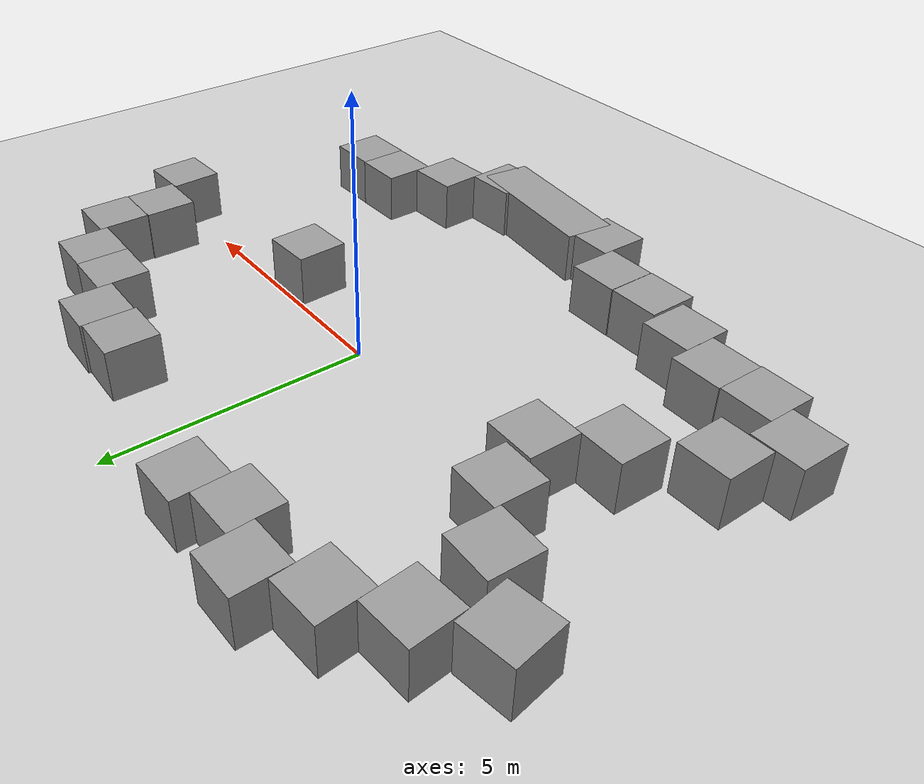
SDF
<sdf version="1.6">
 <world name="default">
  <light name="sun" type="directional">
   <pose>0 0 10 0 -0 0</pose>
   <diffuse>0.8 0.8 0.8 1</diffuse>
   <specular>0.2 0.2 0.2 1</specular>
   <attenuation>
    <range>1000</range>
    <constant>0.9</constant>
    <linear>0.01</linear>
    <quadratic>0.001</quadratic>
   </attenuation>
   <direction>-0.5 0.1 -0.9</direction>
  </light>
  <model name="ground_plane">
   <static>1</static>
   <link name="link">
    <collision name="collision">
     <geometry><plane><normal>0 0 1</normal><size>100 100</size></plane></geometry>
     <surface><friction><ode><mu>100</mu><mu2>50</mu2></ode></friction></surface>
    </collision>
    <visual name="visual">
     <cast_shadows>0</cast_shadows>
     <geometry><plane><normal>0 0 1</normal><size>100 100</size></plane></geometry>
     <material>
      <script><uri>file://media/materials/scripts/gazebo.material</uri><name>Gazebo/Grey</name></script>
     </material>
    </visual>
   </link>
  </model>
  <gravity>0 0 -9.8</gravity>
  <magnetic_field>6e-06 2.3e-05 -4.2e-05</magnetic_field>
  <atmosphere type="adiabatic"/>
  <physics name="default_physics" default="0" type="ode">
   <max_step_size>0.001</max_step_size>
   <real_time_factor>1</real_time_factor>
   <real_time_update_rate>1000</real_time_update_rate>
  </physics>
  <scene><ambient>0.4 0.4 0.4 1</ambient><background>0.7 0.7 0.7 1</background><shadows>1</shadows></scene>
  <audio><device>default</device></audio>
  <spherical_coordinates>
   <surface_model>EARTH_WGS84</surface_model>
   <latitude_deg>0</latitude_deg>
   <longitude_deg>0</longitude_deg>
   <elevation>0</elevation>
   <heading_deg>0</heading_deg>
  </spherical_coordinates>
  <model name="unit_box_0">
   <pose>1.82753 3.62356 0.5 0 0 -0.021123</pose>
   <link name="link">
    <inertial>
     <mass>1</mass>
     <inertia>
      <ixx>0.166667</ixx>
      <ixy>0</ixy>
      <ixz>0</ixz>
      <iyy>0.166667</iyy>
      <iyz>0</iyz>
      <izz>0.166667</izz>
     </inertia>
    </inertial>
    <collision name="collision"><geometry><box><size>1 1 1</size></box></geometry></collision>
    <visual name="visual">
     <geometry><box><size>1 1 1</size></box></geometry>
     <material>
      <script><name>Gazebo/Grey</name><uri>file://media/materials/scripts/gazebo.material</uri></script>
     </material>
    </visual>
   </link>
  </model>
  <model name="unit_box_1">
   <pose>-1.94266 4.33352 0.499995 0 1e-05 0.027602</pose>
   <link name="link">
    <inertial>
     <mass>1</mass>
     <inertia>
      <ixx>0.166667</ixx>
      <ixy>0</ixy>
      <ixz>0</ixz>
      <iyy>0.166667</iyy>
      <iyz>0</iyz>
      <izz>0.166667</izz>
     </inertia>
    </inertial>
    <collision name="collision"><geometry><box><size>1 1 1</size></box></geometry></collision>
    <visual name="visual">
     <geometry><box><size>1 1 1</size></box></geometry>
     <material>
      <script><name>Gazebo/Grey</name><uri>file://media/materials/scripts/gazebo.material</uri></script>
     </material>
    </visual>
   </link>
  </model>
  <model name="unit_box_2">
   <pose>-2.93371 3.98585 0.499995 1e-05 0 0.027647</pose>
   <link name="link">
    <inertial>
     <mass>1</mass>
     <inertia>
      <ixx>0.166667</ixx>
      <ixy>0</ixy>
      <ixz>0</ixz>
      <iyy>0.166667</iyy>
      <iyz>0</iyz>
      <izz>0.166667</izz>
     </inertia>
    </inertial>
    <collision name="collision"><geometry><box><size>1 1 1</size></box></geometry></collision>
    <visual name="visual">
     <geometry><box><size>1 1 1</size></box></geometry>
     <material>
      <script><name>Gazebo/Grey</name><uri>file://media/materials/scripts/gazebo.material</uri></script>
     </material>
    </visual>
   </link>
  </model>
  <model name="unit_box_3">
   <pose>-3.94809 4.49135 0.499995 -1e-05 -0 0.027491</pose>
   <link name="link">
    <inertial>
     <mass>1</mass>
     <inertia>
      <ixx>0.166667</ixx>
      <ixy>0</ixy>
      <ixz>0</ixz>
      <iyy>0.166667</iyy>
      <iyz>0</iyz>
      <izz>0.166667</izz>
     </inertia>
    </inertial>
    <collision name="collision"><geometry><box><size>1 1 1</size></box></geometry></collision>
    <visual name="visual">
     <geometry><box><size>1 1 1</size></box></geometry>
     <material>
      <script><name>Gazebo/Grey</name><uri>file://media/materials/scripts/gazebo.material</uri></script>
     </material>
    </visual>
   </link>
  </model>
  <model name="unit_box_4">
   <pose>-4.92927 3.87665 0.5 0 -0 0.068876</pose>
   <link name="link">
    <inertial>
     <mass>1</mass>
     <inertia>
      <ixx>0.166667</ixx>
      <ixy>0</ixy>
      <ixz>0</ixz>
      <iyy>0.166667</iyy>
      <iyz>0</iyz>
      <izz>0.166667</izz>
     </inertia>
    </inertial>
    <collision name="collision"><geometry><box><size>1 1 1</size></box></geometry></collision>
    <visual name="visual">
     <geometry><box><size>1 1 1</size></box></geometry>
     <material>
      <script><name>Gazebo/Grey</name><uri>file://media/materials/scripts/gazebo.material</uri></script>
     </material>
    </visual>
   </link>
  </model>
  <model name="unit_box_5">
   <pose>-6.81215 2.35411 0.5 0 -0 0.146906</pose>
   <link name="link">
    <inertial>
     <mass>1</mass>
     <inertia>
      <ixx>0.166667</ixx>
      <ixy>0</ixy>
      <ixz>0</ixz>
      <iyy>0.166667</iyy>
      <iyz>0</iyz>
      <izz>0.166667</izz>
     </inertia>
    </inertial>
    <collision name="collision"><geometry><box><size>1 1 1</size></box></geometry></collision>
    <visual name="visual">
     <geometry><box><size>1 1 1</size></box></geometry>
     <material>
      <script><name>Gazebo/Grey</name><uri>file://media/materials/scripts/gazebo.material</uri></script>
     </material>
    </visual>
   </link>
  </model>
  <model name="unit_box_6">
   <pose>-5.88184 3.15632 0.5 0 -0 0.070733</pose>
   <link name="link">
    <inertial>
     <mass>1</mass>
     <inertia>
      <ixx>0.166667</ixx>
      <ixy>0</ixy>
      <ixz>0</ixz>
      <iyy>0.166667</iyy>
      <iyz>0</iyz>
      <izz>0.166667</izz>
     </inertia>
    </inertial>
    <collision name="collision"><geometry><box><size>1 1 1</size></box></geometry></collision>
    <visual name="visual">
     <geometry><box><size>1 1 1</size></box></geometry>
     <material>
      <script><name>Gazebo/Grey</name><uri>file://media/materials/scripts/gazebo.material</uri></script>
     </material>
    </visual>
   </link>
  </model>
  <model name="unit_box_7">
   <pose>-5.67089 1.66103 0.499995 0 -1e-05 -0.042166</pose>
   <link name="link">
    <inertial>
     <mass>1</mass>
     <inertia>
      <ixx>0.166667</ixx>
      <ixy>0</ixy>
      <ixz>0</ixz>
      <iyy>0.166667</iyy>
      <iyz>0</iyz>
      <izz>0.166667</izz>
     </inertia>
    </inertial>
    <collision name="collision"><geometry><box><size>1 1 1</size></box></geometry></collision>
    <visual name="visual">
     <geometry><box><size>1 1 1</size></box></geometry>
     <material>
      <script><name>Gazebo/Grey</name><uri>file://media/materials/scripts/gazebo.material</uri></script>
     </material>
    </visual>
   </link>
  </model>
  <model name="unit_box_8">
   <pose>-4.70845 0.737815 0.499995 0 -1e-05 -0.042439</pose>
   <link name="link">
    <inertial>
     <mass>1</mass>
     <inertia>
      <ixx>0.166667</ixx>
      <ixy>0</ixy>
      <ixz>0</ixz>
      <iyy>0.166667</iyy>
      <iyz>0</iyz>
      <izz>0.166667</izz>
     </inertia>
    </inertial>
    <collision name="collision"><geometry><box><size>1 1 1</size></box></geometry></collision>
    <visual name="visual">
     <geometry><box><size>1 1 1</size></box></geometry>
     <material>
      <script><name>Gazebo/Grey</name><uri>file://media/materials/scripts/gazebo.material</uri></script>
     </material>
    </visual>
   </link>
  </model>
  <model name="unit_box_9">
   <pose>2.82836 3.64698 0.499995 -0 1e-05 -0.021115</pose>
   <link name="link">
    <inertial>
     <mass>1</mass>
     <inertia>
      <ixx>0.166667</ixx>
      <ixy>0</ixy>
      <ixz>0</ixz>
      <iyy>0.166667</iyy>
      <iyz>0</iyz>
      <izz>0.166667</izz>
     </inertia>
    </inertial>
    <collision name="collision"><geometry><box><size>1 1 1</size></box></geometry></collision>
    <visual name="visual">
     <geometry><box><size>1 1 1</size></box></geometry>
     <material>
      <script><name>Gazebo/Grey</name><uri>file://media/materials/scripts/gazebo.material</uri></script>
     </material>
    </visual>
   </link>
  </model>
  <model name="unit_box_10">
   <pose>3.81284 2.90051 0.499995 1e-05 0 -0.021219</pose>
   <link name="link">
    <inertial>
     <mass>1</mass>
     <inertia>
      <ixx>0.166667</ixx>
      <ixy>0</ixy>
      <ixz>0</ixz>
      <iyy>0.166667</iyy>
      <iyz>0</iyz>
      <izz>0.166667</izz>
     </inertia>
    </inertial>
    <collision name="collision"><geometry><box><size>1 1 1</size></box></geometry></collision>
    <visual name="visual">
     <geometry><box><size>1 1 1</size></box></geometry>
     <material>
      <script><name>Gazebo/Grey</name><uri>file://media/materials/scripts/gazebo.material</uri></script>
     </material>
    </visual>
   </link>
  </model>
  <model name="unit_box_11">
   <pose>4.81257 2.87631 0.499995 -1e-05 -0 -0.021187</pose>
   <link name="link">
    <inertial>
     <mass>1</mass>
     <inertia>
      <ixx>0.166667</ixx>
      <ixy>0</ixy>
      <ixz>0</ixz>
      <iyy>0.166667</iyy>
      <iyz>0</iyz>
      <izz>0.166667</izz>
     </inertia>
    </inertial>
    <collision name="collision"><geometry><box><size>1 1 1</size></box></geometry></collision>
    <visual name="visual">
     <geometry><box><size>1 1 1</size></box></geometry>
     <material>
      <script><name>Gazebo/Grey</name><uri>file://media/materials/scripts/gazebo.material</uri></script>
     </material>
    </visual>
   </link>
  </model>
  <model name="unit_box_12">
   <pose>-4.23462 -0.329922 0.499995 0 1e-05 -0.024909</pose>
   <link name="link">
    <inertial>
     <mass>1</mass>
     <inertia>
      <ixx>0.166667</ixx>
      <ixy>0</ixy>
      <ixz>0</ixz>
      <iyy>0.166667</iyy>
      <iyz>0</iyz>
      <izz>0.166667</izz>
     </inertia>
    </inertial>
    <collision name="collision"><geometry><box><size>1 1 1</size></box></geometry></collision>
    <visual name="visual">
     <geometry><box><size>1 1 1</size></box></geometry>
     <material>
      <script><name>Gazebo/Grey</name><uri>file://media/materials/scripts/gazebo.material</uri></script>
     </material>
    </visual>
   </link>
  </model>
  <model name="unit_box_13">
   <pose>-5.10743 -1.3088 0.499995 -1e-05 -0 -0.024906</pose>
   <link name="link">
    <inertial>
     <mass>1</mass>
     <inertia>
      <ixx>0.166667</ixx>
      <ixy>0</ixy>
      <ixz>0</ixz>
      <iyy>0.166667</iyy>
      <iyz>0</iyz>
      <izz>0.166667</izz>
     </inertia>
    </inertial>
    <collision name="collision"><geometry><box><size>1 1 1</size></box></geometry></collision>
    <visual name="visual">
     <geometry><box><size>1 1 1</size></box></geometry>
     <material>
      <script><name>Gazebo/Grey</name><uri>file://media/materials/scripts/gazebo.material</uri></script>
     </material>
    </visual>
   </link>
  </model>
  <model name="unit_box_14">
   <pose>-6.22089 -2.30561 0.499995 0 1e-05 5e-06</pose>
   <link name="link">
    <inertial>
     <mass>1</mass>
     <inertia>
      <ixx>0.166667</ixx>
      <ixy>0</ixy>
      <ixz>0</ixz>
      <iyy>0.166667</iyy>
      <iyz>0</iyz>
      <izz>0.166667</izz>
     </inertia>
    </inertial>
    <collision name="collision"><geometry><box><size>1 1 1</size></box></geometry></collision>
    <visual name="visual">
     <geometry><box><size>1 1 1</size></box></geometry>
     <material>
      <script><name>Gazebo/Grey</name><uri>file://media/materials/scripts/gazebo.material</uri></script>
     </material>
    </visual>
   </link>
  </model>
  <model name="unit_box_15">
   <pose>-6.73539 -3.32737 0.499995 -0 1e-05 -0.019647</pose>
   <link name="link">
    <inertial>
     <mass>1</mass>
     <inertia>
      <ixx>0.166667</ixx>
      <ixy>0</ixy>
      <ixz>0</ixz>
      <iyy>0.166667</iyy>
      <iyz>0</iyz>
      <izz>0.166667</izz>
     </inertia>
    </inertial>
    <collision name="collision"><geometry><box><size>1 1 1</size></box></geometry></collision>
    <visual name="visual">
     <geometry><box><size>1 1 1</size></box></geometry>
     <material>
      <script><name>Gazebo/Grey</name><uri>file://media/materials/scripts/gazebo.material</uri></script>
     </material>
    </visual>
   </link>
  </model>
  <model name="unit_box_16">
   <pose>-5.74521 -3.83864 0.499995 -1e-05 -0 -0.019634</pose>
   <link name="link">
    <inertial>
     <mass>1</mass>
     <inertia>
      <ixx>0.166667</ixx>
      <ixy>0</ixy>
      <ixz>0</ixz>
      <iyy>0.166667</iyy>
      <iyz>0</iyz>
      <izz>0.166667</izz>
     </inertia>
    </inertial>
    <collision name="collision"><geometry><box><size>1 1 1</size></box></geometry></collision>
    <visual name="visual">
     <geometry><box><size>1 1 1</size></box></geometry>
     <material>
      <script><name>Gazebo/Grey</name><uri>file://media/materials/scripts/gazebo.material</uri></script>
     </material>
    </visual>
   </link>
  </model>
  <model name="unit_box_17">
   <pose>-4.7446 -3.83329 0.499995 0 -1e-05 -0.01951</pose>
   <link name="link">
    <inertial>
     <mass>1</mass>
     <inertia>
      <ixx>0.166667</ixx>
      <ixy>0</ixy>
      <ixz>0</ixz>
      <iyy>0.166667</iyy>
      <iyz>0</iyz>
      <izz>0.166667</izz>
     </inertia>
    </inertial>
    <collision name="collision"><geometry><box><size>1 1 1</size></box></geometry></collision>
    <visual name="visual">
     <geometry><box><size>1 1 1</size></box></geometry>
     <material>
      <script><name>Gazebo/Grey</name><uri>file://media/materials/scripts/gazebo.material</uri></script>
     </material>
    </visual>
   </link>
  </model>
  <model name="unit_box_18">
   <pose>-3.75047 -4.21159 0.499995 -0 1e-05 -0.017254</pose>
   <link name="link">
    <inertial>
     <mass>1</mass>
     <inertia>
      <ixx>0.166667</ixx>
      <ixy>0</ixy>
      <ixz>0</ixz>
      <iyy>0.166667</iyy>
      <iyz>0</iyz>
      <izz>0.166667</izz>
     </inertia>
    </inertial>
    <collision name="collision"><geometry><box><size>1 1 1</size></box></geometry></collision>
    <visual name="visual">
     <geometry><box><size>1 1 1</size></box></geometry>
     <material>
      <script><name>Gazebo/Grey</name><uri>file://media/materials/scripts/gazebo.material</uri></script>
     </material>
    </visual>
   </link>
  </model>
  <model name="unit_box_19">
   <pose>-2.70443 -4.53962 0.499995 0 -1e-05 -0.007557</pose>
   <link name="link">
    <inertial>
     <mass>1</mass>
     <inertia>
      <ixx>0.166667</ixx>
      <ixy>0</ixy>
      <ixz>0</ixz>
      <iyy>0.166667</iyy>
      <iyz>0</iyz>
      <izz>0.166667</izz>
     </inertia>
    </inertial>
    <collision name="collision"><geometry><box><size>1 1 1</size></box></geometry></collision>
    <visual name="visual">
     <geometry><box><size>1 1 1</size></box></geometry>
     <material>
      <script><name>Gazebo/Grey</name><uri>file://media/materials/scripts/gazebo.material</uri></script>
     </material>
    </visual>
   </link>
  </model>
  <model name="unit_box_20">
   <pose>-1.69842 -4.54366 0.499995 0 -1e-05 -0.017418</pose>
   <link name="link">
    <inertial>
     <mass>1</mass>
     <inertia>
      <ixx>0.166667</ixx>
      <ixy>0</ixy>
      <ixz>0</ixz>
      <iyy>0.166667</iyy>
      <iyz>0</iyz>
      <izz>0.166667</izz>
     </inertia>
    </inertial>
    <collision name="collision"><geometry><box><size>1 1 1</size></box></geometry></collision>
    <visual name="visual">
     <geometry><box><size>1 1 1</size></box></geometry>
     <material>
      <script><name>Gazebo/Grey</name><uri>file://media/materials/scripts/gazebo.material</uri></script>
     </material>
    </visual>
   </link>
  </model>
  <model name="unit_box_21">
   <pose>-0.714626 -5.36744 0.499995 -1e-05 -0 -0.024202</pose>
   <link name="link">
    <inertial>
     <mass>1</mass>
     <inertia>
      <ixx>0.166667</ixx>
      <ixy>0</ixy>
      <ixz>0</ixz>
      <iyy>0.166667</iyy>
      <iyz>0</iyz>
      <izz>0.166667</izz>
     </inertia>
    </inertial>
    <collision name="collision"><geometry><box><size>1 1 1</size></box></geometry></collision>
    <visual name="visual">
     <geometry><box><size>1 1 1</size></box></geometry>
     <material>
      <script><name>Gazebo/Grey</name><uri>file://media/materials/scripts/gazebo.material</uri></script>
     </material>
    </visual>
   </link>
  </model>
  <model name="unit_box_24">
   <pose>2.27602 -5.41743 0.499995 -1e-05 -0 0.041222</pose>
   <link name="link">
    <inertial>
     <mass>1</mass>
     <inertia>
      <ixx>0.166667</ixx>
      <ixy>0</ixy>
      <ixz>0</ixz>
      <iyy>0.166667</iyy>
      <iyz>0</iyz>
      <izz>0.166667</izz>
     </inertia>
    </inertial>
    <collision name="collision"><geometry><box><size>1 1 1</size></box></geometry></collision>
    <visual name="visual">
     <geometry><box><size>1 1 1</size></box></geometry>
     <material>
      <script><name>Gazebo/Grey</name><uri>file://media/materials/scripts/gazebo.material</uri></script>
     </material>
    </visual>
   </link>
  </model>
  <model name="unit_box_25">
   <pose>3.24358 -4.60672 0.499995 -1e-05 0 0.04127</pose>
   <link name="link">
    <inertial>
     <mass>1</mass>
     <inertia>
      <ixx>0.166667</ixx>
      <ixy>0</ixy>
      <ixz>0</ixz>
      <iyy>0.166667</iyy>
      <iyz>0</iyz>
      <izz>0.166667</izz>
     </inertia>
    </inertial>
    <collision name="collision"><geometry><box><size>1 1 1</size></box></geometry></collision>
    <visual name="visual">
     <geometry><box><size>1 1 1</size></box></geometry>
     <material>
      <script><name>Gazebo/Grey</name><uri>file://media/materials/scripts/gazebo.material</uri></script>
     </material>
    </visual>
   </link>
  </model>
  <model name="unit_box_26">
   <pose>4.23323 -3.8982 0.5 0 -0 0.004502</pose>
   <link name="link">
    <inertial>
     <mass>1</mass>
     <inertia>
      <ixx>0.166667</ixx>
      <ixy>0</ixy>
      <ixz>0</ixz>
      <iyy>0.166667</iyy>
      <iyz>0</iyz>
      <izz>0.166667</izz>
     </inertia>
    </inertial>
    <collision name="collision"><geometry><box><size>1 1 1</size></box></geometry></collision>
    <visual name="visual">
     <geometry><box><size>1 1 1</size></box></geometry>
     <material>
      <script><name>Gazebo/Grey</name><uri>file://media/materials/scripts/gazebo.material</uri></script>
     </material>
    </visual>
   </link>
  </model>
  <model name="unit_box_27">
   <pose>5.23332 -3.90248 0.499995 -1e-05 -0 0.004445</pose>
   <link name="link">
    <inertial>
     <mass>1</mass>
     <inertia>
      <ixx>0.166667</ixx>
      <ixy>0</ixy>
      <ixz>0</ixz>
      <iyy>0.166667</iyy>
      <iyz>0</iyz>
      <izz>0.166667</izz>
     </inertia>
    </inertial>
    <collision name="collision"><geometry><box><size>1 1 1</size></box></geometry></collision>
    <visual name="visual">
     <geometry><box><size>1 1 1</size></box></geometry>
     <material>
      <script><name>Gazebo/Grey</name><uri>file://media/materials/scripts/gazebo.material</uri></script>
     </material>
    </visual>
   </link>
  </model>
  <model name="unit_box_31">
   <pose>6.62594 0.010021 0.499995 0 -1e-05 0.037576</pose>
   <link name="link">
    <inertial>
     <mass>1</mass>
     <inertia>
      <ixx>0.166667</ixx>
      <ixy>0</ixy>
      <ixz>0</ixz>
      <iyy>0.166667</iyy>
      <iyz>0</iyz>
      <izz>0.166667</izz>
     </inertia>
    </inertial>
    <collision name="collision"><geometry><box><size>1 1 1</size></box></geometry></collision>
    <visual name="visual">
     <geometry><box><size>1 1 1</size></box></geometry>
     <material>
      <script><name>Gazebo/Grey</name><uri>file://media/materials/scripts/gazebo.material</uri></script>
     </material>
    </visual>
   </link>
  </model>
  <model name="unit_box_33">
   <pose>5.8008 2.00103 0.499995 -1e-05 -0 -0.008539</pose>
   <link name="link">
    <inertial>
     <mass>1</mass>
     <inertia>
      <ixx>0.166667</ixx>
      <ixy>0</ixy>
      <ixz>0</ixz>
      <iyy>0.166667</iyy>
      <iyz>0</iyz>
      <izz>0.166667</izz>
     </inertia>
    </inertial>
    <collision name="collision"><geometry><box><size>1 1 1</size></box></geometry></collision>
    <visual name="visual">
     <geometry><box><size>1 1 1</size></box></geometry>
     <material>
      <script><name>Gazebo/Grey</name><uri>file://media/materials/scripts/gazebo.material</uri></script>
     </material>
    </visual>
   </link>
  </model>
  <model name="unit_box_34">
   <pose>5.77068 1.00071 0.499995 1e-05 -0 -0.007496</pose>
   <link name="link">
    <inertial>
     <mass>1</mass>
     <inertia>
      <ixx>0.166667</ixx>
      <ixy>0</ixy>
      <ixz>0</ixz>
      <iyy>0.166667</iyy>
      <iyz>0</iyz>
      <izz>0.166667</izz>
     </inertia>
    </inertial>
    <collision name="collision"><geometry><box><size>1 1 1</size></box></geometry></collision>
    <visual name="visual">
     <geometry><box><size>1 1 1</size></box></geometry>
     <material>
      <script><name>Gazebo/Grey</name><uri>file://media/materials/scripts/gazebo.material</uri></script>
     </material>
    </visual>
   </link>
  </model>
  <model name="unit_box_3x1x1_clone">
   <link name="link">
    <inertial>
     <mass>1</mass>
     <inertia>
      <ixx>0.166667</ixx>
      <ixy>0</ixy>
      <ixz>0</ixz>
      <iyy>0.166667</iyy>
      <iyz>0</iyz>
      <izz>0.166667</izz>
     </inertia>
    </inertial>
    <visual name="visual">
     <geometry><box><size>3 1 1</size></box></geometry>
     <material>
      <script><name>Gazebo/Grey</name><uri>file://media/materials/scripts/gazebo.material</uri></script>
      <shader type="vertex"><normal_map>__default__</normal_map></shader>
      <ambient>0.3 0.3 0.3 1</ambient>
      <diffuse>0.7 0.7 0.7 1</diffuse>
      <specular>0.01 0.01 0.01 1</specular>
      <emissive>0 0 0 1</emissive>
     </material>
    </visual>
    <collision name="collision">
     <geometry><box><size>1 1 1</size></box></geometry>
     <surface>
      <friction>
       <ode><mu>1</mu><mu2>1</mu2><fdir1>0 0 0</fdir1><slip1>0</slip1><slip2>0</slip2></ode>
       <torsional>
        <coefficient>1</coefficient>
        <patch_radius>0</patch_radius>
        <surface_radius>0</surface_radius>
        <use_patch_radius>1</use_patch_radius>
        <ode><slip>0</slip></ode>
       </torsional>
      </friction>
      <bounce><restitution_coefficient>0</restitution_coefficient><threshold>1e+06</threshold></bounce>
      <contact>
       <collide_without_contact>0</collide_without_contact>
       <collide_without_contact_bitmask>1</collide_without_contact_bitmask>
       <collide_bitmask>1</collide_bitmask>
       <ode>
        <soft_cfm>0</soft_cfm>
        <soft_erp>0.2</soft_erp>
        <kp>1e+13</kp>
        <kd>1</kd>
        <max_vel>0.01</max_vel>
        <min_depth>0</min_depth>
       </ode>
       <bullet>
        <split_impulse>1</split_impulse>
        <split_impulse_penetration_threshold>-0.01</split_impulse_penetration_threshold>
        <soft_cfm>0</soft_cfm>
        <soft_erp>0.2</soft_erp>
        <kp>1e+13</kp>
        <kd>1</kd>
       </bullet>
      </contact>
     </surface>
    </collision>
   </link>
   <static>0</static>
   <pose>1.08212 -5.42657 0.5 0 -0 -0.126831</pose>
  </model>
  <light name="user_directional_light_0" type="directional">
   <pose>-0.010337 0.095254 1 0 -0 0</pose>
   <diffuse>0.5 0.5 0.5 1</diffuse>
   <specular>0.1 0.1 0.1 1</specular>
   <direction>0.1 0.1 -0.9</direction>
   <attenuation>
    <range>20</range>
    <constant>0.5</constant>
    <linear>0.01</linear>
    <quadratic>0.001</quadratic>
   </attenuation>
  </light>
  <model name="unit_box_31_clone">
   <pose>2.50872 -0.543923 0.5 0 -0 0.037576</pose>
   <link name="link">
    <inertial>
     <mass>1</mass>
     <inertia>
      <ixx>0.166667</ixx>
      <ixy>0</ixy>
      <ixz>0</ixz>
      <iyy>0.166667</iyy>
      <iyz>0</iyz>
      <izz>0.166667</izz>
     </inertia>
    </inertial>
    <collision name="collision"><geometry><box><size>1 1 1</size></box></geometry></collision>
    <visual name="visual">
     <geometry><box><size>1 1 1</size></box></geometry>
     <material>
      <script><name>Gazebo/Grey</name><uri>file://media/materials/scripts/gazebo.material</uri></script>
     </material>
    </visual>
   </link>
  </model>
 </world>
</sdf>
